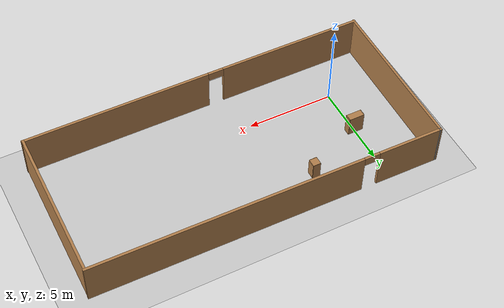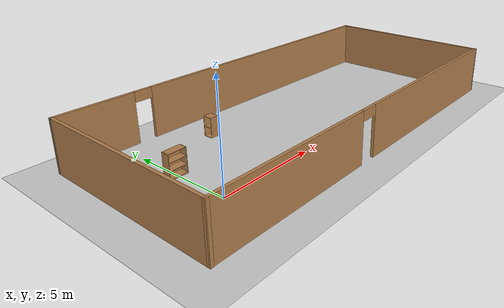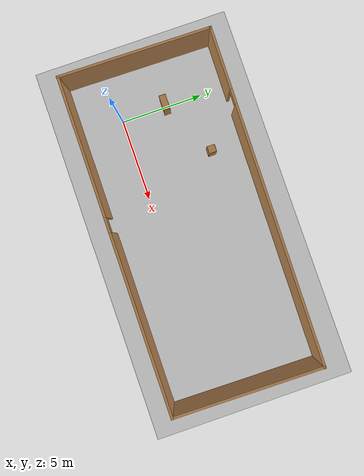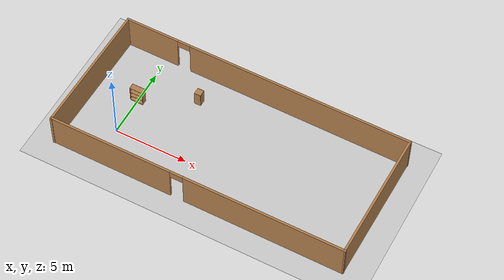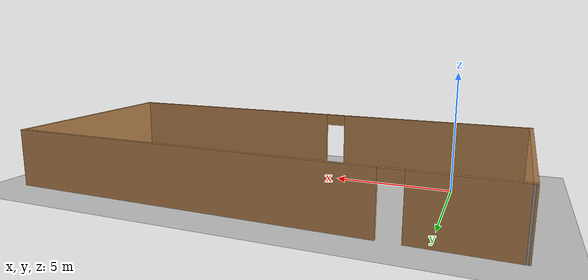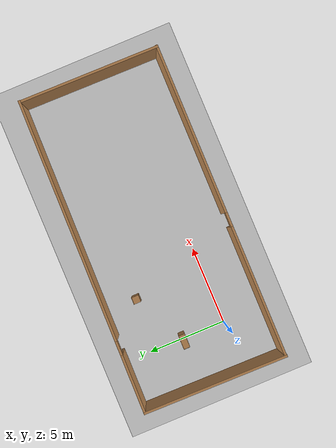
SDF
<sdf version="1.7">
 <world name="default">
  <light name="sun" type="directional">
   <pose>0 0 10 0 -0 0</pose>
   <diffuse>0.8 0.8 0.8 1</diffuse>
   <specular>0.2 0.2 0.2 1</specular>
   <attenuation>
    <range>1000</range>
    <constant>0.9</constant>
    <linear>0.01</linear>
    <quadratic>0.001</quadratic>
   </attenuation>
   <direction>-0.5 0.1 -0.9</direction>
   <spot><inner_angle>0</inner_angle><outer_angle>0</outer_angle><falloff>0</falloff></spot>
  </light>
  <model name="ground_plane">
   <static>1</static>
   <link name="link">
    <collision name="collision">
     <geometry><plane><normal>0 0 1</normal><size>100 100</size></plane></geometry>
     <surface>
      <contact><collide_bitmask>65535</collide_bitmask></contact>
      <friction><ode><mu>100</mu><mu2>50</mu2></ode></friction>
     </surface>
    </collision>
    <visual name="visual">
     <cast_shadows>0</cast_shadows>
     <geometry><plane><normal>0 0 1</normal><size>100 100</size></plane></geometry>
     <material>
      <script><uri>file://media/materials/scripts/gazebo.material</uri><name>Gazebo/Grey</name></script>
     </material>
    </visual>
   </link>
  </model>
  <gravity>0 0 -9.8</gravity>
  <magnetic_field>6e-06 2.3e-05 -4.2e-05</magnetic_field>
  <atmosphere type="adiabatic"/>
  <physics type="ode">
   <max_step_size>0.001</max_step_size>
   <real_time_factor>1</real_time_factor>
   <real_time_update_rate>1000</real_time_update_rate>
  </physics>
  <scene><ambient>0.4 0.4 0.4 1</ambient><background>0.7 0.7 0.7 1</background><shadows>1</shadows></scene>
  <audio><device>default</device></audio>
  <spherical_coordinates>
   <surface_model>EARTH_WGS84</surface_model>
   <latitude_deg>0</latitude_deg>
   <longitude_deg>0</longitude_deg>
   <elevation>0</elevation>
   <heading_deg>0</heading_deg>
  </spherical_coordinates>
  <model name="test">
   <pose>7.15821 1.9831 0 0 -0 0</pose>
   <link name="Wall_0">
    <collision name="Wall_0_Collision">
     <geometry><box><size>9.29699 0.15 2.5</size></box></geometry>
     <pose>0 0 1.25 0 -0 0</pose>
    </collision>
    <visual name="Wall_0_Visual">
     <pose>0 0 1.25 0 -0 0</pose>
     <geometry><box><size>9.29699 0.15 2.5</size></box></geometry>
     <material>
      <script><uri>file://media/materials/scripts/gazebo.material</uri><name>Gazebo/Wood</name></script>
      <ambient>1 1 1 1</ambient>
     </material>
     <meta><layer>0</layer></meta>
    </visual>
    <pose>-10.076 0.013755 0 0 -0 1.55815</pose>
   </link>
   <link name="Wall_1">
    <collision name="Wall_1_Collision">
     <geometry><box><size>0.15 0.15 2.5</size></box></geometry>
     <pose>0 0 1.25 0 -0 0</pose>
    </collision>
    <visual name="Wall_1_Visual">
     <pose>0 0 1.25 0 -0 0</pose>
     <geometry><box><size>0.15 0.15 2.5</size></box></geometry>
     <material>
      <script><uri>file://media/materials/scripts/gazebo.material</uri><name>Gazebo/Grey</name></script>
      <ambient>1 1 1 1</ambient>
     </material>
     <meta><layer>0</layer></meta>
    </visual>
    <pose>-10.0182 4.58689 0 0 -0 0</pose>
   </link>
   <link name="Wall_3">
    <pose>0.057785 4.4481 0 0 -0 -0.013773</pose>
    <visual name="Wall_3_Visual_0">
     <pose>-8.24702 0 1.25 0 -0 0</pose>
     <geometry><box><size>3.80987 0.15 2.5</size></box></geometry>
     <material>
      <script><uri>file://media/materials/scripts/gazebo.material</uri><name>Gazebo/Wood</name></script>
      <ambient>1 1 1 1</ambient>
     </material>
     <meta><layer>0</layer></meta>
    </visual>
    <collision name="Wall_3_Collision_0">
     <geometry><box><size>3.80987 0.15 2.5</size></box></geometry>
     <pose>-8.24702 0 1.25 0 -0 0</pose>
    </collision>
    <visual name="Wall_3_Visual_1">
     <pose>2.35494 0 1.25 0 -0 0</pose>
     <geometry><box><size>15.594 0.15 2.5</size></box></geometry>
     <material>
      <script><uri>file://media/materials/scripts/gazebo.material</uri><name>Gazebo/Wood</name></script>
      <ambient>1 1 1 1</ambient>
     </material>
     <meta><layer>0</layer></meta>
    </visual>
    <collision name="Wall_3_Collision_1">
     <geometry><box><size>15.594 0.15 2.5</size></box></geometry>
     <pose>2.35494 0 1.25 0 -0 0</pose>
    </collision>
    <visual name="Wall_3_Visual_2">
     <pose>-5.89208 0 2.25 0 -0 0</pose>
     <geometry><box><size>0.9 0.15 0.5</size></box></geometry>
     <material>
      <script><uri>file://media/materials/scripts/gazebo.material</uri><name>Gazebo/Wood</name></script>
      <ambient>1 1 1 1</ambient>
     </material>
     <meta><layer>0</layer></meta>
    </visual>
    <collision name="Wall_3_Collision_2">
     <geometry><box><size>0.9 0.15 0.5</size></box></geometry>
     <pose>-5.89208 0 2.25 0 -0 0</pose>
    </collision>
   </link>
   <link name="Wall_4">
    <collision name="Wall_4_Collision">
     <geometry><box><size>9.04701 0.15 2.5</size></box></geometry>
     <pose>0 0 1.25 0 -0 0</pose>
    </collision>
    <visual name="Wall_4_Visual">
     <pose>0 0 1.25 0 -0 0</pose>
     <geometry><box><size>9.04701 0.15 2.5</size></box></geometry>
     <material>
      <script><uri>file://media/materials/scripts/gazebo.material</uri><name>Gazebo/Wood</name></script>
      <ambient>1 1 1 1</ambient>
     </material>
     <meta><layer>0</layer></meta>
    </visual>
    <pose>10.0528 -0.138812 0 0 -0 -1.5838</pose>
   </link>
   <link name="Wall_5">
    <pose>-0.057868 -4.56159 0 0 -0 3.13908</pose>
    <visual name="Wall_5_Visual_0">
     <pose>-4.7032 0 1.25 0 -0 0</pose>
     <geometry><box><size>10.8957 0.15 2.5</size></box></geometry>
     <material>
      <script><uri>file://media/materials/scripts/gazebo.material</uri><name>Gazebo/Wood</name></script>
      <ambient>1 1 1 1</ambient>
     </material>
     <meta><layer>0</layer></meta>
    </visual>
    <collision name="Wall_5_Collision_0">
     <geometry><box><size>10.8957 0.15 2.5</size></box></geometry>
     <pose>-4.7032 0 1.25 0 -0 0</pose>
    </collision>
    <visual name="Wall_5_Visual_1">
     <pose>5.89783 0 1.25 0 -0 0</pose>
     <geometry><box><size>8.50639 0.15 2.5</size></box></geometry>
     <material>
      <script><uri>file://media/materials/scripts/gazebo.material</uri><name>Gazebo/Wood</name></script>
      <ambient>1 1 1 1</ambient>
     </material>
     <meta><layer>0</layer></meta>
    </visual>
    <collision name="Wall_5_Collision_1">
     <geometry><box><size>8.50639 0.15 2.5</size></box></geometry>
     <pose>5.89783 0 1.25 0 -0 0</pose>
    </collision>
    <visual name="Wall_5_Visual_2">
     <pose>1.19463 0 2.25 0 -0 0</pose>
     <geometry><box><size>0.9 0.15 0.5</size></box></geometry>
     <material>
      <script><uri>file://media/materials/scripts/gazebo.material</uri><name>Gazebo/Wood</name></script>
      <ambient>1 1 1 1</ambient>
     </material>
     <meta><layer>0</layer></meta>
    </visual>
    <collision name="Wall_5_Collision_2">
     <geometry><box><size>0.9 0.15 0.5</size></box></geometry>
     <pose>1.19463 0 2.25 0 -0 0</pose>
    </collision>
   </link>
   <static>1</static>
  </model>
  <model name="cabinet">
   <static>1</static>
   <link name="cabinet_bottom_plate">
    <inertial>
     <pose>0 0 -1 0 -0 0</pose>
     <inertia><ixx>2.05</ixx><ixy>0</ixy><ixz>0</ixz><iyy>2.05</iyy><iyz>0</iyz><izz>2.05</izz></inertia>
     <mass>25</mass>
    </inertial>
    <collision name="cabinet_bottom_plate_geom">
     <pose>0 0 0.01 0 -0 0</pose>
     <geometry><box><size>0.45 0.45 0.02</size></box></geometry>
    </collision>
    <visual name="cabinet_bottom_plate_geom_visual">
     <pose>0 0 0.01 0 -0 0</pose>
     <geometry><box><size>0.45 0.45 0.02</size></box></geometry>
     <material>
      <script><uri>file://media/materials/scripts/gazebo.material</uri><name>Gazebo/Wood</name></script>
     </material>
    </visual>
    <collision name="cabinet_bottom_plate_geom_cabinet_back_plate">
     <pose>0.235 0 0.51 0 -0 0</pose>
     <geometry><box><size>0.02 0.45 1.02</size></box></geometry>
    </collision>
    <visual name="cabinet_bottom_plate_geom_cabinet_back_plate_visual">
     <pose>0.235 0 0.51 0 -0 0</pose>
     <geometry><box><size>0.02 0.45 1.02</size></box></geometry>
     <material>
      <script><uri>file://media/materials/scripts/gazebo.material</uri><name>Gazebo/Wood</name></script>
     </material>
    </visual>
    <collision name="cabinet_bottom_plate_geom_cabinet_left_plate">
     <pose>0 0.235 0.51 0 -0 0</pose>
     <geometry><box><size>0.45 0.02 1.02</size></box></geometry>
    </collision>
    <visual name="cabinet_bottom_plate_geom_cabinet_left_plate_visual">
     <pose>0 0.235 0.51 0 -0 0</pose>
     <geometry><box><size>0.45 0.02 1.02</size></box></geometry>
     <material>
      <script><uri>file://media/materials/scripts/gazebo.material</uri><name>Gazebo/Wood</name></script>
     </material>
    </visual>
    <collision name="cabinet_bottom_plate_geom_cabinet_middle_plate">
     <pose>0 0 0.51 0 -0 0</pose>
     <geometry><box><size>0.45 0.45 0.02</size></box></geometry>
    </collision>
    <visual name="cabinet_bottom_plate_geom_cabinet_middle_plate_visual">
     <pose>0 0 0.51 0 -0 0</pose>
     <geometry><box><size>0.45 0.45 0.02</size></box></geometry>
     <material>
      <script><uri>file://media/materials/scripts/gazebo.material</uri><name>Gazebo/Wood</name></script>
     </material>
    </visual>
    <collision name="cabinet_bottom_plate_geom_cabinet_right_plate">
     <pose>0 -0.235 0.51 0 -0 0</pose>
     <geometry><box><size>0.45 0.02 1.02</size></box></geometry>
    </collision>
    <visual name="cabinet_bottom_plate_geom_cabinet_right_plate_visual">
     <pose>0 -0.235 0.51 0 -0 0</pose>
     <geometry><box><size>0.45 0.02 1.02</size></box></geometry>
     <material>
      <script><uri>file://media/materials/scripts/gazebo.material</uri><name>Gazebo/Wood</name></script>
     </material>
    </visual>
    <collision name="cabinet_bottom_plate_geom_cabinet_top_plate">
     <pose>0 0 1.01 0 -0 0</pose>
     <geometry><box><size>0.45 0.45 0.02</size></box></geometry>
    </collision>
    <visual name="cabinet_bottom_plate_geom_cabinet_top_plate_visual">
     <pose>0 0 1.01 0 -0 0</pose>
     <geometry><box><size>0.45 0.45 0.02</size></box></geometry>
     <material>
      <script><uri>file://media/materials/scripts/gazebo.material</uri><name>Gazebo/Wood</name></script>
     </material>
    </visual>
   </link>
   <pose>3.50102 4.50925 0 0 -0 0</pose>
  </model>
  <model name="bookshelf">
   <static>1</static>
   <link name="link">
    <inertial><mass>1</mass></inertial>
    <collision name="back">
     <pose>0 0.005 0.6 0 -0 0</pose>
     <geometry><box><size>0.9 0.01 1.2</size></box></geometry>
    </collision>
    <visual name="visual1">
     <pose>0 0.005 0.6 0 -0 0</pose>
     <geometry><box><size>0.9 0.01 1.2</size></box></geometry>
     <material>
      <script><uri>file://media/materials/scripts/gazebo.material</uri><name>Gazebo/Wood</name></script>
     </material>
    </visual>
    <collision name="left_side">
     <pose>0.45 -0.195 0.6 0 -0 0</pose>
     <geometry><box><size>0.02 0.4 1.2</size></box></geometry>
    </collision>
    <visual name="visual2">
     <pose>0.45 -0.195 0.6 0 -0 0</pose>
     <geometry><box><size>0.02 0.4 1.2</size></box></geometry>
     <material>
      <script><uri>file://media/materials/scripts/gazebo.material</uri><name>Gazebo/Wood</name></script>
     </material>
    </visual>
    <collision name="right_side">
     <pose>-0.45 -0.195 0.6 0 -0 0</pose>
     <geometry><box><size>0.02 0.4 1.2</size></box></geometry>
    </collision>
    <visual name="visual3">
     <pose>-0.45 -0.195 0.6 0 -0 0</pose>
     <geometry><box><size>0.02 0.4 1.2</size></box></geometry>
     <material>
      <script><uri>file://media/materials/scripts/gazebo.material</uri><name>Gazebo/Wood</name></script>
     </material>
    </visual>
    <collision name="bottom">
     <pose>0 -0.195 0.03 0 -0 0</pose>
     <geometry><box><size>0.88 0.4 0.06</size></box></geometry>
    </collision>
    <visual name="visual4">
     <pose>0 -0.195 0.03 0 -0 0</pose>
     <geometry><box><size>0.88 0.4 0.06</size></box></geometry>
     <material>
      <script><uri>file://media/materials/scripts/gazebo.material</uri><name>Gazebo/Wood</name></script>
     </material>
    </visual>
    <collision name="top">
     <pose>0 -0.195 1.19 0 -0 0</pose>
     <geometry><box><size>0.88 0.4 0.02</size></box></geometry>
    </collision>
    <visual name="visual5">
     <pose>0 -0.195 1.19 0 -0 0</pose>
     <geometry><box><size>0.88 0.4 0.02</size></box></geometry>
     <material>
      <script><uri>file://media/materials/scripts/gazebo.material</uri><name>Gazebo/Wood</name></script>
     </material>
    </visual>
    <collision name="low_shelf">
     <pose>0 -0.195 0.43 0 -0 0</pose>
     <geometry><box><size>0.88 0.4 0.02</size></box></geometry>
    </collision>
    <visual name="visual6">
     <pose>0 -0.195 0.43 0 -0 0</pose>
     <geometry><box><size>0.88 0.4 0.02</size></box></geometry>
     <material>
      <script><uri>file://media/materials/scripts/gazebo.material</uri><name>Gazebo/Wood</name></script>
     </material>
    </visual>
    <collision name="high_shelf">
     <pose>0 -0.195 0.8 0 -0 0</pose>
     <geometry><box><size>0.88 0.4 0.02</size></box></geometry>
    </collision>
    <visual name="visual7">
     <pose>0 -0.195 0.8 0 -0 0</pose>
     <geometry><box><size>0.88 0.4 0.02</size></box></geometry>
     <material>
      <script><uri>file://media/materials/scripts/gazebo.material</uri><name>Gazebo/Wood</name></script>
     </material>
    </visual>
   </link>
   <pose>-0.018708 2.953 0 0 -0 0</pose>
  </model>
 </world>
</sdf>
